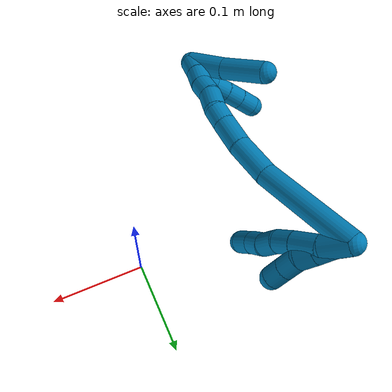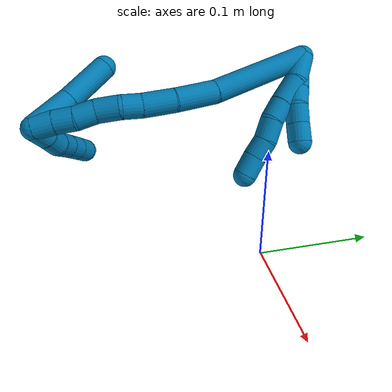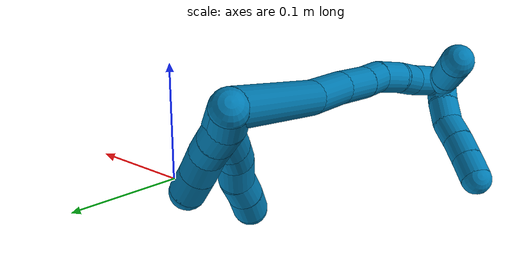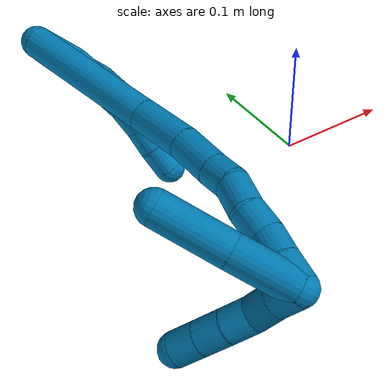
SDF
<sdf version="1.7">
 <world name="default">
  <model name="9">
   <static>0</static>
   <link name="9">
    <collision name="collision-cylinder-e_1_2_8">
     <pose>-0.000189 0.001438 -0.016158 -3.05281 -0.011648 0.260756</pose>
     <geometry><cylinder><radius>0.0125</radius><length>0.032447</length></cylinder></geometry>
     <surface>
      <friction><ode><mu>1.16</mu><mu2>1.16</mu2><slip1>0</slip1><slip2>0</slip2></ode></friction>
      <contact><ode><kp>1e+06</kp><kd>1</kd><max_vel>0</max_vel><min_depth>0.001</min_depth></ode></contact>
     </surface>
    </collision>
    <visual name="visual-cylinder-e_1_2_8">
     <pose>-0.000189 0.001438 -0.016158 -3.05281 -0.011648 0.260756</pose>
     <geometry><cylinder><radius>0.0125</radius><length>0.032447</length></cylinder></geometry>
     <material><ambient>0 0.490196 0.709804 1</ambient></material>
    </visual>
    <collision name="collision-cylinder-e_2_8_9">
     <pose>-0.004041 0.001002 -0.047179 3.01611 -0.239801 -2.18027</pose>
     <geometry><cylinder><radius>0.0125</radius><length>0.030842</length></cylinder></geometry>
     <surface>
      <friction><ode><mu>1.16</mu><mu2>1.16</mu2><slip1>0</slip1><slip2>0</slip2></ode></friction>
      <contact><ode><kp>1e+06</kp><kd>1</kd><max_vel>0</max_vel><min_depth>0.001</min_depth></ode></contact>
     </surface>
    </collision>
    <visual name="visual-cylinder-e_2_8_9">
     <pose>-0.004041 0.001002 -0.047179 3.01611 -0.239801 -2.18027</pose>
     <geometry><cylinder><radius>0.0125</radius><length>0.030842</length></cylinder></geometry>
     <material><ambient>0 0.490196 0.709804 1</ambient></material>
    </visual>
    <collision name="collision-cylinder-e_3_9_10">
     <pose>-0.010517 -0.001549 -0.072388 3.0763 -0.264964 -2.66094</pose>
     <geometry><cylinder><radius>0.0125</radius><length>0.02149</length></cylinder></geometry>
     <surface>
      <friction><ode><mu>1.16</mu><mu2>1.16</mu2><slip1>0</slip1><slip2>0</slip2></ode></friction>
      <contact><ode><kp>1e+06</kp><kd>1</kd><max_vel>0</max_vel><min_depth>0.001</min_depth></ode></contact>
     </surface>
    </collision>
    <visual name="visual-cylinder-e_3_9_10">
     <pose>-0.010517 -0.001549 -0.072388 3.0763 -0.264964 -2.66094</pose>
     <geometry><cylinder><radius>0.0125</radius><length>0.02149</length></cylinder></geometry>
     <material><ambient>0 0.490196 0.709804 1</ambient></material>
    </visual>
    <collision name="collision-cylinder-e_4_10_11">
     <pose>-0.017576 -7.2e-05 -0.093139 -2.93744 -0.380186 2.16323</pose>
     <geometry><cylinder><radius>0.0125</radius><length>0.02288</length></cylinder></geometry>
     <surface>
      <friction><ode><mu>1.16</mu><mu2>1.16</mu2><slip1>0</slip1><slip2>0</slip2></ode></friction>
      <contact><ode><kp>1e+06</kp><kd>1</kd><max_vel>0</max_vel><min_depth>0.001</min_depth></ode></contact>
     </surface>
    </collision>
    <visual name="visual-cylinder-e_4_10_11">
     <pose>-0.017576 -7.2e-05 -0.093139 -2.93744 -0.380186 2.16323</pose>
     <geometry><cylinder><radius>0.0125</radius><length>0.02288</length></cylinder></geometry>
     <material><ambient>0 0.490196 0.709804 1</ambient></material>
    </visual>
    <collision name="collision-cylinder-e_5_11_12">
     <pose>-0.026731 0.001655 -0.112502 3.09403 -0.500777 -2.95611</pose>
     <geometry><cylinder><radius>0.0125</radius><length>0.020454</length></cylinder></geometry>
     <surface>
      <friction><ode><mu>1.16</mu><mu2>1.16</mu2><slip1>0</slip1><slip2>0</slip2></ode></friction>
      <contact><ode><kp>1e+06</kp><kd>1</kd><max_vel>0</max_vel><min_depth>0.001</min_depth></ode></contact>
     </surface>
    </collision>
    <visual name="visual-cylinder-e_5_11_12">
     <pose>-0.026731 0.001655 -0.112502 3.09403 -0.500777 -2.95611</pose>
     <geometry><cylinder><radius>0.0125</radius><length>0.020454</length></cylinder></geometry>
     <material><ambient>0 0.490196 0.709804 1</ambient></material>
    </visual>
    <collision name="collision-cylinder-e_6_12_6">
     <pose>-0.036261 0.00143 -0.131383 -3.1212 -0.435724 3.04955</pose>
     <geometry><cylinder><radius>0.0125</radius><length>0.021888</length></cylinder></geometry>
     <surface>
      <friction><ode><mu>1.16</mu><mu2>1.16</mu2><slip1>0</slip1><slip2>0</slip2></ode></friction>
      <contact><ode><kp>1e+06</kp><kd>1</kd><max_vel>0</max_vel><min_depth>0.001</min_depth></ode></contact>
     </surface>
    </collision>
    <visual name="visual-cylinder-e_6_12_6">
     <pose>-0.036261 0.00143 -0.131383 -3.1212 -0.435724 3.04955</pose>
     <geometry><cylinder><radius>0.0125</radius><length>0.021888</length></cylinder></geometry>
     <material><ambient>0 0.490196 0.709804 1</ambient></material>
    </visual>
    <collision name="collision-cylinder-e_1_2_13">
     <pose>-0.00133 0.001316 -0.009823 -3.00838 -0.133393 1.57218</pose>
     <geometry><cylinder><radius>0.0125</radius><length>0.02</length></cylinder></geometry>
     <surface>
      <friction><ode><mu>1.16</mu><mu2>1.16</mu2><slip1>0</slip1><slip2>0</slip2></ode></friction>
      <contact><ode><kp>1e+06</kp><kd>1</kd><max_vel>0</max_vel><min_depth>0.001</min_depth></ode></contact>
     </surface>
    </collision>
    <visual name="visual-cylinder-e_1_2_13">
     <pose>-0.00133 0.001316 -0.009823 -3.00838 -0.133393 1.57218</pose>
     <geometry><cylinder><radius>0.0125</radius><length>0.02</length></cylinder></geometry>
     <material><ambient>0 0.490196 0.709804 1</ambient></material>
    </visual>
    <collision name="collision-cylinder-e_2_13_14">
     <pose>-0.002487 0.00558 -0.029201 -2.84235 0.017314 -0.114733</pose>
     <geometry><cylinder><radius>0.0125</radius><length>0.02</length></cylinder></geometry>
     <surface>
      <friction><ode><mu>1.16</mu><mu2>1.16</mu2><slip1>0</slip1><slip2>0</slip2></ode></friction>
      <contact><ode><kp>1e+06</kp><kd>1</kd><max_vel>0</max_vel><min_depth>0.001</min_depth></ode></contact>
     </surface>
    </collision>
    <visual name="visual-cylinder-e_2_13_14">
     <pose>-0.002487 0.00558 -0.029201 -2.84235 0.017314 -0.114733</pose>
     <geometry><cylinder><radius>0.0125</radius><length>0.02</length></cylinder></geometry>
     <material><ambient>0 0.490196 0.709804 1</ambient></material>
    </visual>
    <collision name="collision-cylinder-e_3_14_15">
     <pose>-0.00214 0.011152 -0.048403 -2.87604 0.017355 -0.129759</pose>
     <geometry><cylinder><radius>0.0125</radius><length>0.02</length></cylinder></geometry>
     <surface>
      <friction><ode><mu>1.16</mu><mu2>1.16</mu2><slip1>0</slip1><slip2>0</slip2></ode></friction>
      <contact><ode><kp>1e+06</kp><kd>1</kd><max_vel>0</max_vel><min_depth>0.001</min_depth></ode></contact>
     </surface>
    </collision>
    <visual name="visual-cylinder-e_3_14_15">
     <pose>-0.00214 0.011152 -0.048403 -2.87604 0.017355 -0.129759</pose>
     <geometry><cylinder><radius>0.0125</radius><length>0.02</length></cylinder></geometry>
     <material><ambient>0 0.490196 0.709804 1</ambient></material>
    </visual>
    <collision name="collision-cylinder-e_4_15_16">
     <pose>-0.003446 0.018709 -0.066623 -2.61937 -0.148471 0.542915</pose>
     <geometry><cylinder><radius>0.0125</radius><length>0.02</length></cylinder></geometry>
     <surface>
      <friction><ode><mu>1.16</mu><mu2>1.16</mu2><slip1>0</slip1><slip2>0</slip2></ode></friction>
      <contact><ode><kp>1e+06</kp><kd>1</kd><max_vel>0</max_vel><min_depth>0.001</min_depth></ode></contact>
     </surface>
    </collision>
    <visual name="visual-cylinder-e_4_15_16">
     <pose>-0.003446 0.018709 -0.066623 -2.61937 -0.148471 0.542915</pose>
     <geometry><cylinder><radius>0.0125</radius><length>0.02</length></cylinder></geometry>
     <material><ambient>0 0.490196 0.709804 1</ambient></material>
    </visual>
    <collision name="collision-cylinder-e_5_16_5">
     <pose>-0.005976 0.028689 -0.083763 -2.60927 -0.105311 0.381928</pose>
     <geometry><cylinder><radius>0.0125</radius><length>0.02</length></cylinder></geometry>
     <surface>
      <friction><ode><mu>1.16</mu><mu2>1.16</mu2><slip1>0</slip1><slip2>0</slip2></ode></friction>
      <contact><ode><kp>1e+06</kp><kd>1</kd><max_vel>0</max_vel><min_depth>0.001</min_depth></ode></contact>
     </surface>
    </collision>
    <visual name="visual-cylinder-e_5_16_5">
     <pose>-0.005976 0.028689 -0.083763 -2.60927 -0.105311 0.381928</pose>
     <geometry><cylinder><radius>0.0125</radius><length>0.02</length></cylinder></geometry>
     <material><ambient>0 0.490196 0.709804 1</ambient></material>
    </visual>
    <collision name="collision-cylinder-e_1_2_17">
     <pose>-0.00865 -0.035504 -0.043935 2.46193 -0.151951 -0.424144</pose>
     <geometry><cylinder><radius>0.0125</radius><length>0.114292</length></cylinder></geometry>
     <surface>
      <friction><ode><mu>1.16</mu><mu2>1.16</mu2><slip1>0</slip1><slip2>0</slip2></ode></friction>
      <contact><ode><kp>1e+06</kp><kd>1</kd><max_vel>0</max_vel><min_depth>0.001</min_depth></ode></contact>
     </surface>
    </collision>
    <visual name="visual-cylinder-e_1_2_17">
     <pose>-0.00865 -0.035504 -0.043935 2.46193 -0.151951 -0.424144</pose>
     <geometry><cylinder><radius>0.0125</radius><length>0.114292</length></cylinder></geometry>
     <material><ambient>0 0.490196 0.709804 1</ambient></material>
    </visual>
    <collision name="collision-cylinder-e_2_17_18">
     <pose>-0.020498 -0.087255 -0.102315 2.29754 -0.146034 -0.322982</pose>
     <geometry><cylinder><radius>0.0125</radius><length>0.043947</length></cylinder></geometry>
     <surface>
      <friction><ode><mu>1.16</mu><mu2>1.16</mu2><slip1>0</slip1><slip2>0</slip2></ode></friction>
      <contact><ode><kp>1e+06</kp><kd>1</kd><max_vel>0</max_vel><min_depth>0.001</min_depth></ode></contact>
     </surface>
    </collision>
    <visual name="visual-cylinder-e_2_17_18">
     <pose>-0.020498 -0.087255 -0.102315 2.29754 -0.146034 -0.322982</pose>
     <geometry><cylinder><radius>0.0125</radius><length>0.043947</length></cylinder></geometry>
     <material><ambient>0 0.490196 0.709804 1</ambient></material>
    </visual>
    <collision name="collision-cylinder-e_3_18_19">
     <pose>-0.027871 -0.116654 -0.126701 2.21806 -0.248082 -0.49097</pose>
     <geometry><cylinder><radius>0.0125</radius><length>0.034014</length></cylinder></geometry>
     <surface>
      <friction><ode><mu>1.16</mu><mu2>1.16</mu2><slip1>0</slip1><slip2>0</slip2></ode></friction>
      <contact><ode><kp>1e+06</kp><kd>1</kd><max_vel>0</max_vel><min_depth>0.001</min_depth></ode></contact>
     </surface>
    </collision>
    <visual name="visual-cylinder-e_3_18_19">
     <pose>-0.027871 -0.116654 -0.126701 2.21806 -0.248082 -0.49097</pose>
     <geometry><cylinder><radius>0.0125</radius><length>0.034014</length></cylinder></geometry>
     <material><ambient>0 0.490196 0.709804 1</ambient></material>
    </visual>
    <collision name="collision-cylinder-e_4_19_20">
     <pose>-0.033873 -0.138206 -0.142082 2.14547 -0.180496 -0.329806</pose>
     <geometry><cylinder><radius>0.0125</radius><length>0.020347</length></cylinder></geometry>
     <surface>
      <friction><ode><mu>1.16</mu><mu2>1.16</mu2><slip1>0</slip1><slip2>0</slip2></ode></friction>
      <contact><ode><kp>1e+06</kp><kd>1</kd><max_vel>0</max_vel><min_depth>0.001</min_depth></ode></contact>
     </surface>
    </collision>
    <visual name="visual-cylinder-e_4_19_20">
     <pose>-0.033873 -0.138206 -0.142082 2.14547 -0.180496 -0.329806</pose>
     <geometry><cylinder><radius>0.0125</radius><length>0.020347</length></cylinder></geometry>
     <material><ambient>0 0.490196 0.709804 1</ambient></material>
    </visual>
    <collision name="collision-cylinder-e_5_20_21">
     <pose>-0.041569 -0.155621 -0.153023 2.1187 -0.50731 -0.865387</pose>
     <geometry><cylinder><radius>0.0125</radius><length>0.024165</length></cylinder></geometry>
     <surface>
      <friction><ode><mu>1.16</mu><mu2>1.16</mu2><slip1>0</slip1><slip2>0</slip2></ode></friction>
      <contact><ode><kp>1e+06</kp><kd>1</kd><max_vel>0</max_vel><min_depth>0.001</min_depth></ode></contact>
     </surface>
    </collision>
    <visual name="visual-cylinder-e_5_20_21">
     <pose>-0.041569 -0.155621 -0.153023 2.1187 -0.50731 -0.865387</pose>
     <geometry><cylinder><radius>0.0125</radius><length>0.024165</length></cylinder></geometry>
     <material><ambient>0 0.490196 0.709804 1</ambient></material>
    </visual>
    <collision name="collision-cylinder-e_6_21_22">
     <pose>-0.051722 -0.171522 -0.165504 2.36294 -0.411834 -0.941845</pose>
     <geometry><cylinder><radius>0.0125</radius><length>0.021398</length></cylinder></geometry>
     <surface>
      <friction><ode><mu>1.16</mu><mu2>1.16</mu2><slip1>0</slip1><slip2>0</slip2></ode></friction>
      <contact><ode><kp>1e+06</kp><kd>1</kd><max_vel>0</max_vel><min_depth>0.001</min_depth></ode></contact>
     </surface>
    </collision>
    <visual name="visual-cylinder-e_6_21_22">
     <pose>-0.051722 -0.171522 -0.165504 2.36294 -0.411834 -0.941845</pose>
     <geometry><cylinder><radius>0.0125</radius><length>0.021398</length></cylinder></geometry>
     <material><ambient>0 0.490196 0.709804 1</ambient></material>
    </visual>
    <collision name="collision-cylinder-e_7_22_23">
     <pose>-0.060819 -0.185943 -0.17738 2.14706 -0.491787 -0.86624</pose>
     <geometry><cylinder><radius>0.0125</radius><length>0.02039</length></cylinder></geometry>
     <surface>
      <friction><ode><mu>1.16</mu><mu2>1.16</mu2><slip1>0</slip1><slip2>0</slip2></ode></friction>
      <contact><ode><kp>1e+06</kp><kd>1</kd><max_vel>0</max_vel><min_depth>0.001</min_depth></ode></contact>
     </surface>
    </collision>
    <visual name="visual-cylinder-e_7_22_23">
     <pose>-0.060819 -0.185943 -0.17738 2.14706 -0.491787 -0.86624</pose>
     <geometry><cylinder><radius>0.0125</radius><length>0.02039</length></cylinder></geometry>
     <material><ambient>0 0.490196 0.709804 1</ambient></material>
    </visual>
    <collision name="collision-cylinder-e_8_23_1">
     <pose>-0.070524 -0.200841 -0.188349 2.26041 -0.473612 -0.946148</pose>
     <geometry><cylinder><radius>0.0125</radius><length>0.021448</length></cylinder></geometry>
     <surface>
      <friction><ode><mu>1.16</mu><mu2>1.16</mu2><slip1>0</slip1><slip2>0</slip2></ode></friction>
      <contact><ode><kp>1e+06</kp><kd>1</kd><max_vel>0</max_vel><min_depth>0.001</min_depth></ode></contact>
     </surface>
    </collision>
    <visual name="visual-cylinder-e_8_23_1">
     <pose>-0.070524 -0.200841 -0.188349 2.26041 -0.473612 -0.946148</pose>
     <geometry><cylinder><radius>0.0125</radius><length>0.021448</length></cylinder></geometry>
     <material><ambient>0 0.490196 0.709804 1</ambient></material>
    </visual>
    <collision name="collision-cylinder-e_1_1_24">
     <pose>-0.074618 -0.200411 -0.172344 -0.339354 0.034055 -0.005835</pose>
     <geometry><cylinder><radius>0.0125</radius><length>0.04685</length></cylinder></geometry>
     <surface>
      <friction><ode><mu>1.16</mu><mu2>1.16</mu2><slip1>0</slip1><slip2>0</slip2></ode></friction>
      <contact><ode><kp>1e+06</kp><kd>1</kd><max_vel>0</max_vel><min_depth>0.001</min_depth></ode></contact>
     </surface>
    </collision>
    <visual name="visual-cylinder-e_1_1_24">
     <pose>-0.074618 -0.200411 -0.172344 -0.339354 0.034055 -0.005835</pose>
     <geometry><cylinder><radius>0.0125</radius><length>0.04685</length></cylinder></geometry>
     <material><ambient>0 0.490196 0.709804 1</ambient></material>
    </visual>
    <collision name="collision-cylinder-e_2_24_4">
     <pose>-0.072405 -0.185423 -0.124725 -0.274566 0.053265 -0.00736</pose>
     <geometry><cylinder><radius>0.0125</radius><length>0.05315</length></cylinder></geometry>
     <surface>
      <friction><ode><mu>1.16</mu><mu2>1.16</mu2><slip1>0</slip1><slip2>0</slip2></ode></friction>
      <contact><ode><kp>1e+06</kp><kd>1</kd><max_vel>0</max_vel><min_depth>0.001</min_depth></ode></contact>
     </surface>
    </collision>
    <visual name="visual-cylinder-e_2_24_4">
     <pose>-0.072405 -0.185423 -0.124725 -0.274566 0.053265 -0.00736</pose>
     <geometry><cylinder><radius>0.0125</radius><length>0.05315</length></cylinder></geometry>
     <material><ambient>0 0.490196 0.709804 1</ambient></material>
    </visual>
    <collision name="collision-cylinder-e_1_1_25">
     <pose>-0.082011 -0.200927 -0.192538 -1.31756 -0.72021 0.567255</pose>
     <geometry><cylinder><radius>0.0125</radius><length>0.02</length></cylinder></geometry>
     <surface>
      <friction><ode><mu>1.16</mu><mu2>1.16</mu2><slip1>0</slip1><slip2>0</slip2></ode></friction>
      <contact><ode><kp>1e+06</kp><kd>1</kd><max_vel>0</max_vel><min_depth>0.001</min_depth></ode></contact>
     </surface>
    </collision>
    <visual name="visual-cylinder-e_1_1_25">
     <pose>-0.082011 -0.200927 -0.192538 -1.31756 -0.72021 0.567255</pose>
     <geometry><cylinder><radius>0.0125</radius><length>0.02</length></cylinder></geometry>
     <material><ambient>0 0.490196 0.709804 1</ambient></material>
    </visual>
    <collision name="collision-cylinder-e_2_25_26">
     <pose>-0.096087 -0.187256 -0.18888 -1.3001 -0.845187 0.658862</pose>
     <geometry><cylinder><radius>0.0125</radius><length>0.02</length></cylinder></geometry>
     <surface>
      <friction><ode><mu>1.16</mu><mu2>1.16</mu2><slip1>0</slip1><slip2>0</slip2></ode></friction>
      <contact><ode><kp>1e+06</kp><kd>1</kd><max_vel>0</max_vel><min_depth>0.001</min_depth></ode></contact>
     </surface>
    </collision>
    <visual name="visual-cylinder-e_2_25_26">
     <pose>-0.096087 -0.187256 -0.18888 -1.3001 -0.845187 0.658862</pose>
     <geometry><cylinder><radius>0.0125</radius><length>0.02</length></cylinder></geometry>
     <material><ambient>0 0.490196 0.709804 1</ambient></material>
    </visual>
    <collision name="collision-cylinder-e_3_26_27">
     <pose>-0.111235 -0.176191 -0.1827 -0.814633 -0.873613 0.39755</pose>
     <geometry><cylinder><radius>0.0125</radius><length>0.02</length></cylinder></geometry>
     <surface>
      <friction><ode><mu>1.16</mu><mu2>1.16</mu2><slip1>0</slip1><slip2>0</slip2></ode></friction>
      <contact><ode><kp>1e+06</kp><kd>1</kd><max_vel>0</max_vel><min_depth>0.001</min_depth></ode></contact>
     </surface>
    </collision>
    <visual name="visual-cylinder-e_3_26_27">
     <pose>-0.111235 -0.176191 -0.1827 -0.814633 -0.873613 0.39755</pose>
     <geometry><cylinder><radius>0.0125</radius><length>0.02</length></cylinder></geometry>
     <material><ambient>0 0.490196 0.709804 1</ambient></material>
    </visual>
    <collision name="collision-cylinder-e_4_27_28">
     <pose>-0.126412 -0.166362 -0.174174 -0.896723 -0.84968 0.42855</pose>
     <geometry><cylinder><radius>0.0125</radius><length>0.02</length></cylinder></geometry>
     <surface>
      <friction><ode><mu>1.16</mu><mu2>1.16</mu2><slip1>0</slip1><slip2>0</slip2></ode></friction>
      <contact><ode><kp>1e+06</kp><kd>1</kd><max_vel>0</max_vel><min_depth>0.001</min_depth></ode></contact>
     </surface>
    </collision>
    <visual name="visual-cylinder-e_4_27_28">
     <pose>-0.126412 -0.166362 -0.174174 -0.896723 -0.84968 0.42855</pose>
     <geometry><cylinder><radius>0.0125</radius><length>0.02</length></cylinder></geometry>
     <material><ambient>0 0.490196 0.709804 1</ambient></material>
    </visual>
    <collision name="collision-cylinder-e_5_28_3">
     <pose>-0.141368 -0.155878 -0.166028 -0.923695 -0.839906 0.437399</pose>
     <geometry><cylinder><radius>0.0125</radius><length>0.02</length></cylinder></geometry>
     <surface>
      <friction><ode><mu>1.16</mu><mu2>1.16</mu2><slip1>0</slip1><slip2>0</slip2></ode></friction>
      <contact><ode><kp>1e+06</kp><kd>1</kd><max_vel>0</max_vel><min_depth>0.001</min_depth></ode></contact>
     </surface>
    </collision>
    <visual name="visual-cylinder-e_5_28_3">
     <pose>-0.141368 -0.155878 -0.166028 -0.923695 -0.839906 0.437399</pose>
     <geometry><cylinder><radius>0.0125</radius><length>0.02</length></cylinder></geometry>
     <material><ambient>0 0.490196 0.709804 1</ambient></material>
    </visual>
    <collision name="collision-sphere-3">
     <pose>-0.148814 -0.150552 -0.162004 0 -0 0</pose>
     <geometry><sphere><radius>0.0125</radius></sphere></geometry>
     <surface>
      <friction><ode><mu>1.16</mu><mu2>1.16</mu2><slip1>0</slip1><slip2>0</slip2></ode></friction>
      <contact><ode><kp>1e+06</kp><kd>1</kd><max_vel>0</max_vel><min_depth>0.001</min_depth></ode></contact>
     </surface>
    </collision>
    <visual name="visual-sphere-3">
     <pose>-0.148814 -0.150552 -0.162004 0 -0 0</pose>
     <geometry><sphere><radius>0.0125</radius></sphere></geometry>
     <material><ambient>0 0.490196 0.709804 1</ambient></material>
    </visual>
    <collision name="collision-sphere-28">
     <pose>-0.133922 -0.161203 -0.170053 0 -0 0</pose>
     <geometry><sphere><radius>0.0125</radius></sphere></geometry>
     <surface>
      <friction><ode><mu>1.16</mu><mu2>1.16</mu2><slip1>0</slip1><slip2>0</slip2></ode></friction>
      <contact><ode><kp>1e+06</kp><kd>1</kd><max_vel>0</max_vel><min_depth>0.001</min_depth></ode></contact>
     </surface>
    </collision>
    <visual name="visual-sphere-28">
     <pose>-0.133922 -0.161203 -0.170053 0 -0 0</pose>
     <geometry><sphere><radius>0.0125</radius></sphere></geometry>
     <material><ambient>0 0.490196 0.709804 1</ambient></material>
    </visual>
    <collision name="collision-sphere-27">
     <pose>-0.118901 -0.17152 -0.178295 0 -0 0</pose>
     <geometry><sphere><radius>0.0125</radius></sphere></geometry>
     <surface>
      <friction><ode><mu>1.16</mu><mu2>1.16</mu2><slip1>0</slip1><slip2>0</slip2></ode></friction>
      <contact><ode><kp>1e+06</kp><kd>1</kd><max_vel>0</max_vel><min_depth>0.001</min_depth></ode></contact>
     </surface>
    </collision>
    <visual name="visual-sphere-27">
     <pose>-0.118901 -0.17152 -0.178295 0 -0 0</pose>
     <geometry><sphere><radius>0.0125</radius></sphere></geometry>
     <material><ambient>0 0.490196 0.709804 1</ambient></material>
    </visual>
    <collision name="collision-sphere-26">
     <pose>-0.103568 -0.180862 -0.187105 0 -0 0</pose>
     <geometry><sphere><radius>0.0125</radius></sphere></geometry>
     <surface>
      <friction><ode><mu>1.16</mu><mu2>1.16</mu2><slip1>0</slip1><slip2>0</slip2></ode></friction>
      <contact><ode><kp>1e+06</kp><kd>1</kd><max_vel>0</max_vel><min_depth>0.001</min_depth></ode></contact>
     </surface>
    </collision>
    <visual name="visual-sphere-26">
     <pose>-0.103568 -0.180862 -0.187105 0 -0 0</pose>
     <geometry><sphere><radius>0.0125</radius></sphere></geometry>
     <material><ambient>0 0.490196 0.709804 1</ambient></material>
    </visual>
    <collision name="collision-sphere-25">
     <pose>-0.088606 -0.19365 -0.190654 0 -0 0</pose>
     <geometry><sphere><radius>0.0125</radius></sphere></geometry>
     <surface>
      <friction><ode><mu>1.16</mu><mu2>1.16</mu2><slip1>0</slip1><slip2>0</slip2></ode></friction>
      <contact><ode><kp>1e+06</kp><kd>1</kd><max_vel>0</max_vel><min_depth>0.001</min_depth></ode></contact>
     </surface>
    </collision>
    <visual name="visual-sphere-25">
     <pose>-0.088606 -0.19365 -0.190654 0 -0 0</pose>
     <geometry><sphere><radius>0.0125</radius></sphere></geometry>
     <material><ambient>0 0.490196 0.709804 1</ambient></material>
    </visual>
    <collision name="collision-sphere-4">
     <pose>-0.07099 -0.178228 -0.099182 0 -0 0</pose>
     <geometry><sphere><radius>0.0125</radius></sphere></geometry>
     <surface>
      <friction><ode><mu>1.16</mu><mu2>1.16</mu2><slip1>0</slip1><slip2>0</slip2></ode></friction>
      <contact><ode><kp>1e+06</kp><kd>1</kd><max_vel>0</max_vel><min_depth>0.001</min_depth></ode></contact>
     </surface>
    </collision>
    <visual name="visual-sphere-4">
     <pose>-0.07099 -0.178228 -0.099182 0 -0 0</pose>
     <geometry><sphere><radius>0.0125</radius></sphere></geometry>
     <material><ambient>0 0.490196 0.709804 1</ambient></material>
    </visual>
    <collision name="collision-sphere-24">
     <pose>-0.07382 -0.192618 -0.150268 0 -0 0</pose>
     <geometry><sphere><radius>0.0125</radius></sphere></geometry>
     <surface>
      <friction><ode><mu>1.16</mu><mu2>1.16</mu2><slip1>0</slip1><slip2>0</slip2></ode></friction>
      <contact><ode><kp>1e+06</kp><kd>1</kd><max_vel>0</max_vel><min_depth>0.001</min_depth></ode></contact>
     </surface>
    </collision>
    <visual name="visual-sphere-24">
     <pose>-0.07382 -0.192618 -0.150268 0 -0 0</pose>
     <geometry><sphere><radius>0.0125</radius></sphere></geometry>
     <material><ambient>0 0.490196 0.709804 1</ambient></material>
    </visual>
    <collision name="collision-sphere-1">
     <pose>-0.075415 -0.208204 -0.194421 0 -0 0</pose>
     <geometry><sphere><radius>0.0125</radius></sphere></geometry>
     <surface>
      <friction><ode><mu>1.16</mu><mu2>1.16</mu2><slip1>0</slip1><slip2>0</slip2></ode></friction>
      <contact><ode><kp>1e+06</kp><kd>1</kd><max_vel>0</max_vel><min_depth>0.001</min_depth></ode></contact>
     </surface>
    </collision>
    <visual name="visual-sphere-1">
     <pose>-0.075415 -0.208204 -0.194421 0 -0 0</pose>
     <geometry><sphere><radius>0.0125</radius></sphere></geometry>
     <material><ambient>0 0.490196 0.709804 1</ambient></material>
    </visual>
    <collision name="collision-sphere-23">
     <pose>-0.065633 -0.193479 -0.182277 0 -0 0</pose>
     <geometry><sphere><radius>0.0125</radius></sphere></geometry>
     <surface>
      <friction><ode><mu>1.16</mu><mu2>1.16</mu2><slip1>0</slip1><slip2>0</slip2></ode></friction>
      <contact><ode><kp>1e+06</kp><kd>1</kd><max_vel>0</max_vel><min_depth>0.001</min_depth></ode></contact>
     </surface>
    </collision>
    <visual name="visual-sphere-23">
     <pose>-0.065633 -0.193479 -0.182277 0 -0 0</pose>
     <geometry><sphere><radius>0.0125</radius></sphere></geometry>
     <material><ambient>0 0.490196 0.709804 1</ambient></material>
    </visual>
    <collision name="collision-sphere-22">
     <pose>-0.056005 -0.178408 -0.172483 0 -0 0</pose>
     <geometry><sphere><radius>0.0125</radius></sphere></geometry>
     <surface>
      <friction><ode><mu>1.16</mu><mu2>1.16</mu2><slip1>0</slip1><slip2>0</slip2></ode></friction>
      <contact><ode><kp>1e+06</kp><kd>1</kd><max_vel>0</max_vel><min_depth>0.001</min_depth></ode></contact>
     </surface>
    </collision>
    <visual name="visual-sphere-22">
     <pose>-0.056005 -0.178408 -0.172483 0 -0 0</pose>
     <geometry><sphere><radius>0.0125</radius></sphere></geometry>
     <material><ambient>0 0.490196 0.709804 1</ambient></material>
    </visual>
    <collision name="collision-sphere-21">
     <pose>-0.047439 -0.164636 -0.158524 0 -0 0</pose>
     <geometry><sphere><radius>0.0125</radius></sphere></geometry>
     <surface>
      <friction><ode><mu>1.16</mu><mu2>1.16</mu2><slip1>0</slip1><slip2>0</slip2></ode></friction>
      <contact><ode><kp>1e+06</kp><kd>1</kd><max_vel>0</max_vel><min_depth>0.001</min_depth></ode></contact>
     </surface>
    </collision>
    <visual name="visual-sphere-21">
     <pose>-0.047439 -0.164636 -0.158524 0 -0 0</pose>
     <geometry><sphere><radius>0.0125</radius></sphere></geometry>
     <material><ambient>0 0.490196 0.709804 1</ambient></material>
    </visual>
    <collision name="collision-sphere-12">
     <pose>-0.031641 0.001228 -0.121463 0 -0 0</pose>
     <geometry><sphere><radius>0.0125</radius></sphere></geometry>
     <surface>
      <friction><ode><mu>1.16</mu><mu2>1.16</mu2><slip1>0</slip1><slip2>0</slip2></ode></friction>
      <contact><ode><kp>1e+06</kp><kd>1</kd><max_vel>0</max_vel><min_depth>0.001</min_depth></ode></contact>
     </surface>
    </collision>
    <visual name="visual-sphere-12">
     <pose>-0.031641 0.001228 -0.121463 0 -0 0</pose>
     <geometry><sphere><radius>0.0125</radius></sphere></geometry>
     <material><ambient>0 0.490196 0.709804 1</ambient></material>
    </visual>
    <collision name="collision-sphere-11">
     <pose>-0.021821 0.002081 -0.103541 0 -0 0</pose>
     <geometry><sphere><radius>0.0125</radius></sphere></geometry>
     <surface>
      <friction><ode><mu>1.16</mu><mu2>1.16</mu2><slip1>0</slip1><slip2>0</slip2></ode></friction>
      <contact><ode><kp>1e+06</kp><kd>1</kd><max_vel>0</max_vel><min_depth>0.001</min_depth></ode></contact>
     </surface>
    </collision>
    <visual name="visual-sphere-11">
     <pose>-0.021821 0.002081 -0.103541 0 -0 0</pose>
     <geometry><sphere><radius>0.0125</radius></sphere></geometry>
     <material><ambient>0 0.490196 0.709804 1</ambient></material>
    </visual>
    <collision name="collision-sphere-10">
     <pose>-0.013331 -0.002226 -0.082736 0 -0 0</pose>
     <geometry><sphere><radius>0.0125</radius></sphere></geometry>
     <surface>
      <friction><ode><mu>1.16</mu><mu2>1.16</mu2><slip1>0</slip1><slip2>0</slip2></ode></friction>
      <contact><ode><kp>1e+06</kp><kd>1</kd><max_vel>0</max_vel><min_depth>0.001</min_depth></ode></contact>
     </surface>
    </collision>
    <visual name="visual-sphere-10">
     <pose>-0.013331 -0.002226 -0.082736 0 -0 0</pose>
     <geometry><sphere><radius>0.0125</radius></sphere></geometry>
     <material><ambient>0 0.490196 0.709804 1</ambient></material>
    </visual>
    <collision name="collision-sphere-9">
     <pose>-0.007703 -0.000873 -0.06204 0 -0 0</pose>
     <geometry><sphere><radius>0.0125</radius></sphere></geometry>
     <surface>
      <friction><ode><mu>1.16</mu><mu2>1.16</mu2><slip1>0</slip1><slip2>0</slip2></ode></friction>
      <contact><ode><kp>1e+06</kp><kd>1</kd><max_vel>0</max_vel><min_depth>0.001</min_depth></ode></contact>
     </surface>
    </collision>
    <visual name="visual-sphere-9">
     <pose>-0.007703 -0.000873 -0.06204 0 -0 0</pose>
     <geometry><sphere><radius>0.0125</radius></sphere></geometry>
     <material><ambient>0 0.490196 0.709804 1</ambient></material>
    </visual>
    <collision name="collision-sphere-2">
     <geometry><sphere><radius>0.0125</radius></sphere></geometry>
     <surface>
      <friction><ode><mu>1.16</mu><mu2>1.16</mu2><slip1>0</slip1><slip2>0</slip2></ode></friction>
      <contact><ode><kp>1e+06</kp><kd>1</kd><max_vel>0</max_vel><min_depth>0.001</min_depth></ode></contact>
     </surface>
    </collision>
    <visual name="visual-sphere-2">
     <geometry><sphere><radius>0.0125</radius></sphere></geometry>
     <material><ambient>0 0.490196 0.709804 1</ambient></material>
    </visual>
    <collision name="collision-sphere-19">
     <pose>-0.032047 -0.129806 -0.136642 0 -0 0</pose>
     <geometry><sphere><radius>0.0125</radius></sphere></geometry>
     <surface>
      <friction><ode><mu>1.16</mu><mu2>1.16</mu2><slip1>0</slip1><slip2>0</slip2></ode></friction>
      <contact><ode><kp>1e+06</kp><kd>1</kd><max_vel>0</max_vel><min_depth>0.001</min_depth></ode></contact>
     </surface>
    </collision>
    <visual name="visual-sphere-19">
     <pose>-0.032047 -0.129806 -0.136642 0 -0 0</pose>
     <geometry><sphere><radius>0.0125</radius></sphere></geometry>
     <material><ambient>0 0.490196 0.709804 1</ambient></material>
    </visual>
    <collision name="collision-sphere-8">
     <pose>-0.000378 0.002877 -0.032317 0 -0 0</pose>
     <geometry><sphere><radius>0.0125</radius></sphere></geometry>
     <surface>
      <friction><ode><mu>1.16</mu><mu2>1.16</mu2><slip1>0</slip1><slip2>0</slip2></ode></friction>
      <contact><ode><kp>1e+06</kp><kd>1</kd><max_vel>0</max_vel><min_depth>0.001</min_depth></ode></contact>
     </surface>
    </collision>
    <visual name="visual-sphere-8">
     <pose>-0.000378 0.002877 -0.032317 0 -0 0</pose>
     <geometry><sphere><radius>0.0125</radius></sphere></geometry>
     <material><ambient>0 0.490196 0.709804 1</ambient></material>
    </visual>
    <collision name="collision-sphere-6">
     <pose>-0.04088 0.001633 -0.141302 0 -0 0</pose>
     <geometry><sphere><radius>0.0125</radius></sphere></geometry>
     <surface>
      <friction><ode><mu>1.16</mu><mu2>1.16</mu2><slip1>0</slip1><slip2>0</slip2></ode></friction>
      <contact><ode><kp>1e+06</kp><kd>1</kd><max_vel>0</max_vel><min_depth>0.001</min_depth></ode></contact>
     </surface>
    </collision>
    <visual name="visual-sphere-6">
     <pose>-0.04088 0.001633 -0.141302 0 -0 0</pose>
     <geometry><sphere><radius>0.0125</radius></sphere></geometry>
     <material><ambient>0 0.490196 0.709804 1</ambient></material>
    </visual>
    <collision name="collision-sphere-13">
     <pose>-0.00266 0.002633 -0.019647 0 -0 0</pose>
     <geometry><sphere><radius>0.0125</radius></sphere></geometry>
     <surface>
      <friction><ode><mu>1.16</mu><mu2>1.16</mu2><slip1>0</slip1><slip2>0</slip2></ode></friction>
      <contact><ode><kp>1e+06</kp><kd>1</kd><max_vel>0</max_vel><min_depth>0.001</min_depth></ode></contact>
     </surface>
    </collision>
    <visual name="visual-sphere-13">
     <pose>-0.00266 0.002633 -0.019647 0 -0 0</pose>
     <geometry><sphere><radius>0.0125</radius></sphere></geometry>
     <material><ambient>0 0.490196 0.709804 1</ambient></material>
    </visual>
    <collision name="collision-sphere-14">
     <pose>-0.002314 0.008528 -0.038755 0 -0 0</pose>
     <geometry><sphere><radius>0.0125</radius></sphere></geometry>
     <surface>
      <friction><ode><mu>1.16</mu><mu2>1.16</mu2><slip1>0</slip1><slip2>0</slip2></ode></friction>
      <contact><ode><kp>1e+06</kp><kd>1</kd><max_vel>0</max_vel><min_depth>0.001</min_depth></ode></contact>
     </surface>
    </collision>
    <visual name="visual-sphere-14">
     <pose>-0.002314 0.008528 -0.038755 0 -0 0</pose>
     <geometry><sphere><radius>0.0125</radius></sphere></geometry>
     <material><ambient>0 0.490196 0.709804 1</ambient></material>
    </visual>
    <collision name="collision-sphere-15">
     <pose>-0.001967 0.013776 -0.058051 0 -0 0</pose>
     <geometry><sphere><radius>0.0125</radius></sphere></geometry>
     <surface>
      <friction><ode><mu>1.16</mu><mu2>1.16</mu2><slip1>0</slip1><slip2>0</slip2></ode></friction>
      <contact><ode><kp>1e+06</kp><kd>1</kd><max_vel>0</max_vel><min_depth>0.001</min_depth></ode></contact>
     </surface>
    </collision>
    <visual name="visual-sphere-15">
     <pose>-0.001967 0.013776 -0.058051 0 -0 0</pose>
     <geometry><sphere><radius>0.0125</radius></sphere></geometry>
     <material><ambient>0 0.490196 0.709804 1</ambient></material>
    </visual>
    <collision name="collision-sphere-16">
     <pose>-0.004925 0.023642 -0.075195 0 -0 0</pose>
     <geometry><sphere><radius>0.0125</radius></sphere></geometry>
     <surface>
      <friction><ode><mu>1.16</mu><mu2>1.16</mu2><slip1>0</slip1><slip2>0</slip2></ode></friction>
      <contact><ode><kp>1e+06</kp><kd>1</kd><max_vel>0</max_vel><min_depth>0.001</min_depth></ode></contact>
     </surface>
    </collision>
    <visual name="visual-sphere-16">
     <pose>-0.004925 0.023642 -0.075195 0 -0 0</pose>
     <geometry><sphere><radius>0.0125</radius></sphere></geometry>
     <material><ambient>0 0.490196 0.709804 1</ambient></material>
    </visual>
    <collision name="collision-sphere-5">
     <pose>-0.007027 0.033737 -0.092332 0 -0 0</pose>
     <geometry><sphere><radius>0.0125</radius></sphere></geometry>
     <surface>
      <friction><ode><mu>1.16</mu><mu2>1.16</mu2><slip1>0</slip1><slip2>0</slip2></ode></friction>
      <contact><ode><kp>1e+06</kp><kd>1</kd><max_vel>0</max_vel><min_depth>0.001</min_depth></ode></contact>
     </surface>
    </collision>
    <visual name="visual-sphere-5">
     <pose>-0.007027 0.033737 -0.092332 0 -0 0</pose>
     <geometry><sphere><radius>0.0125</radius></sphere></geometry>
     <material><ambient>0 0.490196 0.709804 1</ambient></material>
    </visual>
    <collision name="collision-sphere-17">
     <pose>-0.0173 -0.071008 -0.08787 0 -0 0</pose>
     <geometry><sphere><radius>0.0125</radius></sphere></geometry>
     <surface>
      <friction><ode><mu>1.16</mu><mu2>1.16</mu2><slip1>0</slip1><slip2>0</slip2></ode></friction>
      <contact><ode><kp>1e+06</kp><kd>1</kd><max_vel>0</max_vel><min_depth>0.001</min_depth></ode></contact>
     </surface>
    </collision>
    <visual name="visual-sphere-17">
     <pose>-0.0173 -0.071008 -0.08787 0 -0 0</pose>
     <geometry><sphere><radius>0.0125</radius></sphere></geometry>
     <material><ambient>0 0.490196 0.709804 1</ambient></material>
    </visual>
    <collision name="collision-sphere-18">
     <pose>-0.023695 -0.103502 -0.11676 0 -0 0</pose>
     <geometry><sphere><radius>0.0125</radius></sphere></geometry>
     <surface>
      <friction><ode><mu>1.16</mu><mu2>1.16</mu2><slip1>0</slip1><slip2>0</slip2></ode></friction>
      <contact><ode><kp>1e+06</kp><kd>1</kd><max_vel>0</max_vel><min_depth>0.001</min_depth></ode></contact>
     </surface>
    </collision>
    <visual name="visual-sphere-18">
     <pose>-0.023695 -0.103502 -0.11676 0 -0 0</pose>
     <geometry><sphere><radius>0.0125</radius></sphere></geometry>
     <material><ambient>0 0.490196 0.709804 1</ambient></material>
    </visual>
    <collision name="collision-sphere-20">
     <pose>-0.0357 -0.146607 -0.147523 0 -0 0</pose>
     <geometry><sphere><radius>0.0125</radius></sphere></geometry>
     <surface>
      <friction><ode><mu>1.16</mu><mu2>1.16</mu2><slip1>0</slip1><slip2>0</slip2></ode></friction>
      <contact><ode><kp>1e+06</kp><kd>1</kd><max_vel>0</max_vel><min_depth>0.001</min_depth></ode></contact>
     </surface>
    </collision>
    <visual name="visual-sphere-20">
     <pose>-0.0357 -0.146607 -0.147523 0 -0 0</pose>
     <geometry><sphere><radius>0.0125</radius></sphere></geometry>
     <material><ambient>0 0.490196 0.709804 1</ambient></material>
    </visual>
    <inertial>
     <pose>-0.039045 -0.087683 -0.106671 0 -0 0</pose>
     <mass>0.75</mass>
     <inertia>
      <ixx>9.1e-05</ixx>
      <ixy>0</ixy>
      <ixz>0</ixz>
      <iyy>-0.000132</iyy>
      <iyz>0</iyz>
      <izz>9.2e-05</izz>
     </inertia>
    </inertial>
   </link>
   <pose>-0.177876 0.103253 0.113784 -0.797391 -0.712936 0.349974</pose>
  </model>
 </world>
</sdf>
